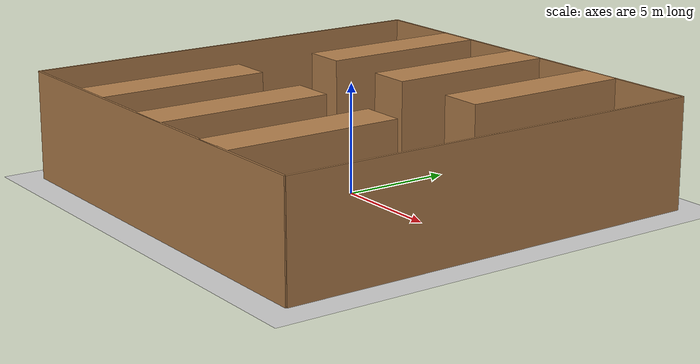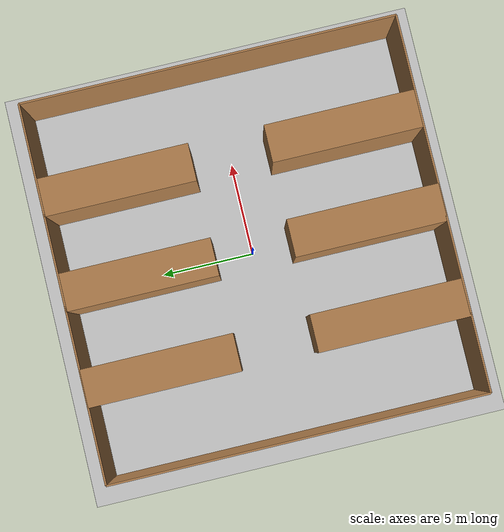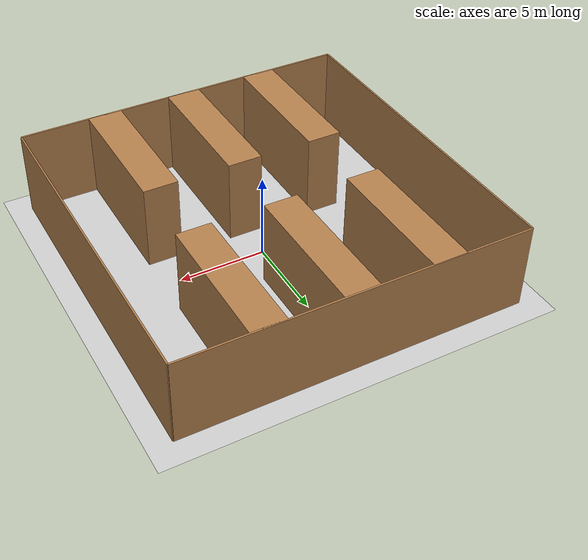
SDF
<sdf version="1.6">
 <world name="default">
  <light name="sun" type="directional">
   <pose>0 0 10 0 -0 0</pose>
   <diffuse>0.8 0.8 0.8 1</diffuse>
   <specular>0.1 0.1 0.1 1</specular>
   <attenuation>
    <range>1000</range>
    <constant>0.9</constant>
    <linear>0.01</linear>
    <quadratic>0.001</quadratic>
   </attenuation>
   <direction>-0.5 0.5 -1</direction>
  </light>
  <model name="ground_plane">
   <static>1</static>
   <link name="link">
    <collision name="collision">
     <geometry><plane><normal>0 0 1</normal><size>100 100</size></plane></geometry>
     <surface><friction><ode><mu>100</mu><mu2>50</mu2></ode></friction></surface>
    </collision>
    <visual name="visual">
     <cast_shadows>0</cast_shadows>
     <geometry><plane><normal>0 0 1</normal><size>100 100</size></plane></geometry>
     <material>
      <script><uri>file://media/materials/scripts/gazebo.material</uri><name>Gazebo/Grey</name></script>
     </material>
    </visual>
   </link>
  </model>
  <gravity>0 0 -9.8</gravity>
  <magnetic_field>6e-06 2.3e-05 -4.2e-05</magnetic_field>
  <atmosphere type="adiabatic"/>
  <physics name="default_physics" default="0" type="ode">
   <max_step_size>0.001</max_step_size>
   <real_time_factor>1</real_time_factor>
   <real_time_update_rate>1000</real_time_update_rate>
  </physics>
  <scene><ambient>0.4 0.4 0.4 1</ambient><background>0.7 0.7 0.7 1</background><shadows>1</shadows></scene>
  <spherical_coordinates>
   <surface_model>EARTH_WGS84</surface_model>
   <latitude_deg>0</latitude_deg>
   <longitude_deg>0</longitude_deg>
   <elevation>0</elevation>
   <heading_deg>0</heading_deg>
  </spherical_coordinates>
  <model name="wall_20m">
   <pose>0 10 0 0 -0 0</pose>
   <link name="Wall_0">
    <collision name="Wall_0_Collision">
     <geometry><box><size>20 0.1 5</size></box></geometry>
     <pose>0 0 2.5 0 -0 0</pose>
    </collision>
    <visual name="Wall_0_Visual">
     <pose>0 0 2.5 0 -0 0</pose>
     <geometry><box><size>20 0.1 5</size></box></geometry>
     <material>
      <script><uri>file://media/materials/scripts/gazebo.material</uri><name>Gazebo/Wood</name></script>
      <ambient>1 0.764706 0.305882 1</ambient>
     </material>
    </visual>
   </link>
   <static>1</static>
  </model>
  <model name="wall_20m_clone">
   <pose>0 -10 0 0 -0 0</pose>
   <link name="Wall_0">
    <collision name="Wall_0_Collision">
     <geometry><box><size>20 0.1 5</size></box></geometry>
     <pose>0 0 2.5 0 -0 0</pose>
    </collision>
    <visual name="Wall_0_Visual">
     <pose>0 0 2.5 0 -0 0</pose>
     <geometry><box><size>20 0.1 5</size></box></geometry>
     <material>
      <script><uri>file://media/materials/scripts/gazebo.material</uri><name>Gazebo/Wood</name></script>
      <ambient>1 0.764706 0.305882 1</ambient>
     </material>
    </visual>
   </link>
   <static>1</static>
  </model>
  <model name="wall_20m_clone_0">
   <pose>-10 0 0 0 -0 1.5707</pose>
   <link name="Wall_0">
    <collision name="Wall_0_Collision">
     <geometry><box><size>20 0.1 5</size></box></geometry>
     <pose>0 0 2.5 0 -0 0</pose>
    </collision>
    <visual name="Wall_0_Visual">
     <pose>0 0 2.5 0 -0 0</pose>
     <geometry><box><size>20 0.1 5</size></box></geometry>
     <material>
      <script><uri>file://media/materials/scripts/gazebo.material</uri><name>Gazebo/Wood</name></script>
      <ambient>1 0.764706 0.305882 1</ambient>
     </material>
    </visual>
   </link>
   <static>1</static>
  </model>
  <model name="wall_20m_clone_1">
   <pose>10 0 0 0 -0 1.5707</pose>
   <link name="Wall_0">
    <collision name="Wall_0_Collision">
     <geometry><box><size>20 0.1 5</size></box></geometry>
     <pose>0 0 2.5 0 -0 0</pose>
    </collision>
    <visual name="Wall_0_Visual">
     <pose>0 0 2.5 0 -0 0</pose>
     <geometry><box><size>20 0.1 5</size></box></geometry>
     <material>
      <script><uri>file://media/materials/scripts/gazebo.material</uri><name>Gazebo/Wood</name></script>
      <ambient>1 0.764706 0.305882 1</ambient>
     </material>
    </visual>
   </link>
   <static>1</static>
  </model>
  <model name="thick_wall_8m">
   <pose>5 -6 0 0 -0 1.5707</pose>
   <link name="Wall_0">
    <collision name="Wall_0_Collision">
     <geometry><box><size>8 2 5</size></box></geometry>
     <pose>0 0 2.5 0 -0 0</pose>
    </collision>
    <visual name="Wall_0_Visual">
     <pose>0 0 2.5 0 -0 0</pose>
     <geometry><box><size>8 2 5</size></box></geometry>
     <material>
      <script><uri>file://media/materials/scripts/gazebo.material</uri><name>Gazebo/Wood</name></script>
      <ambient>1 1 1 1</ambient>
     </material>
    </visual>
    <pose>0 0 0 0 -0 3.14159</pose>
   </link>
   <static>1</static>
  </model>
  <model name="thick_wall_8m_clone">
   <pose>0 -6 0 0 -0 1.5707</pose>
   <link name="Wall_0">
    <collision name="Wall_0_Collision">
     <geometry><box><size>8 2 5</size></box></geometry>
     <pose>0 0 2.5 0 -0 0</pose>
    </collision>
    <visual name="Wall_0_Visual">
     <pose>0 0 2.5 0 -0 0</pose>
     <geometry><box><size>8 2 5</size></box></geometry>
     <material>
      <script><uri>file://media/materials/scripts/gazebo.material</uri><name>Gazebo/Wood</name></script>
      <ambient>1 1 1 1</ambient>
     </material>
    </visual>
    <pose>0 0 0 0 -0 3.14159</pose>
   </link>
   <static>1</static>
  </model>
  <model name="thick_wall_8m_clone_0">
   <pose>-5 -6 0 0 -0 1.5707</pose>
   <link name="Wall_0">
    <collision name="Wall_0_Collision">
     <geometry><box><size>8 2 5</size></box></geometry>
     <pose>0 0 2.5 0 -0 0</pose>
    </collision>
    <visual name="Wall_0_Visual">
     <pose>0 0 2.5 0 -0 0</pose>
     <geometry><box><size>8 2 5</size></box></geometry>
     <material>
      <script><uri>file://media/materials/scripts/gazebo.material</uri><name>Gazebo/Wood</name></script>
      <ambient>1 1 1 1</ambient>
     </material>
    </visual>
    <pose>0 0 0 0 -0 3.14159</pose>
   </link>
   <static>1</static>
  </model>
  <model name="thick_wall_8m_clone_1">
   <pose>-5 6 0 0 -0 1.5707</pose>
   <link name="Wall_0">
    <collision name="Wall_0_Collision">
     <geometry><box><size>8 2 5</size></box></geometry>
     <pose>0 0 2.5 0 -0 0</pose>
    </collision>
    <visual name="Wall_0_Visual">
     <pose>0 0 2.5 0 -0 0</pose>
     <geometry><box><size>8 2 5</size></box></geometry>
     <material>
      <script><uri>file://media/materials/scripts/gazebo.material</uri><name>Gazebo/Wood</name></script>
      <ambient>1 1 1 1</ambient>
     </material>
    </visual>
    <pose>0 0 0 0 -0 3.14159</pose>
   </link>
   <static>1</static>
  </model>
  <model name="thick_wall_8m_clone_2">
   <pose>0 6 0 0 -0 1.5707</pose>
   <link name="Wall_0">
    <collision name="Wall_0_Collision">
     <geometry><box><size>8 2 5</size></box></geometry>
     <pose>0 0 2.5 0 -0 0</pose>
    </collision>
    <visual name="Wall_0_Visual">
     <pose>0 0 2.5 0 -0 0</pose>
     <geometry><box><size>8 2 5</size></box></geometry>
     <material>
      <script><uri>file://media/materials/scripts/gazebo.material</uri><name>Gazebo/Wood</name></script>
      <ambient>1 1 1 1</ambient>
     </material>
    </visual>
    <pose>0 0 0 0 -0 3.14159</pose>
   </link>
   <static>1</static>
  </model>
  <model name="thick_wall_8m_clone_3">
   <pose>5 6 0 0 -0 1.5707</pose>
   <link name="Wall_0">
    <collision name="Wall_0_Collision">
     <geometry><box><size>8 2 5</size></box></geometry>
     <pose>0 0 2.5 0 -0 0</pose>
    </collision>
    <visual name="Wall_0_Visual">
     <pose>0 0 2.5 0 -0 0</pose>
     <geometry><box><size>8 2 5</size></box></geometry>
     <material>
      <script><uri>file://media/materials/scripts/gazebo.material</uri><name>Gazebo/Wood</name></script>
      <ambient>1 1 1 1</ambient>
     </material>
    </visual>
    <pose>0 0 0 0 -0 3.14159</pose>
   </link>
   <static>1</static>
  </model>
 </world>
</sdf>
